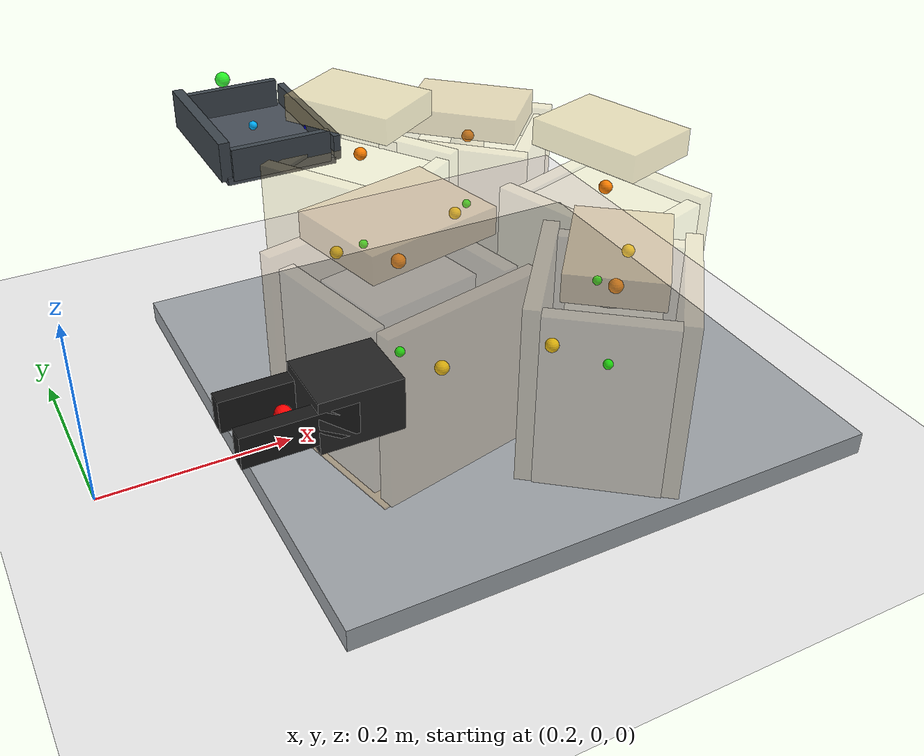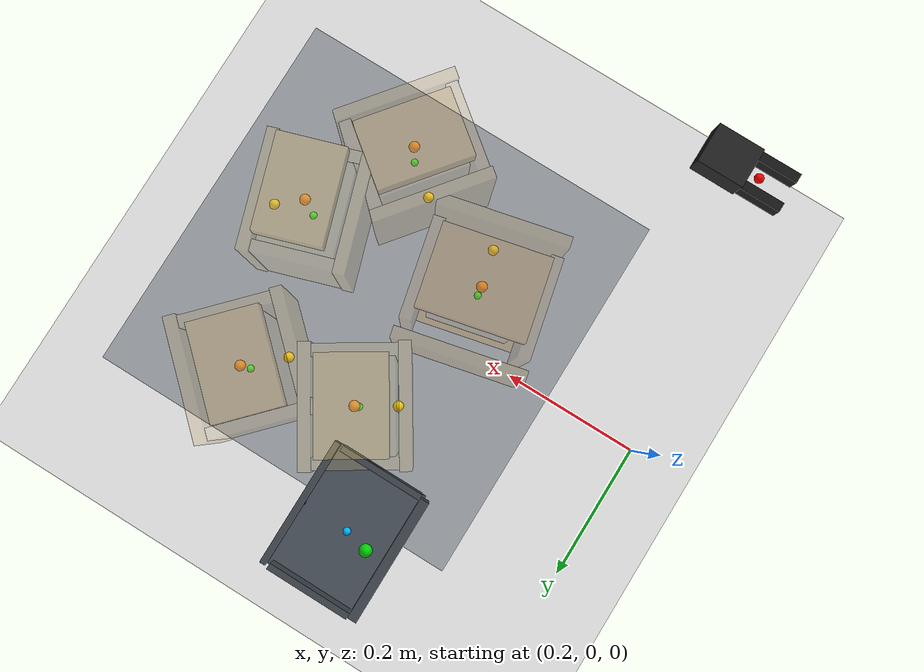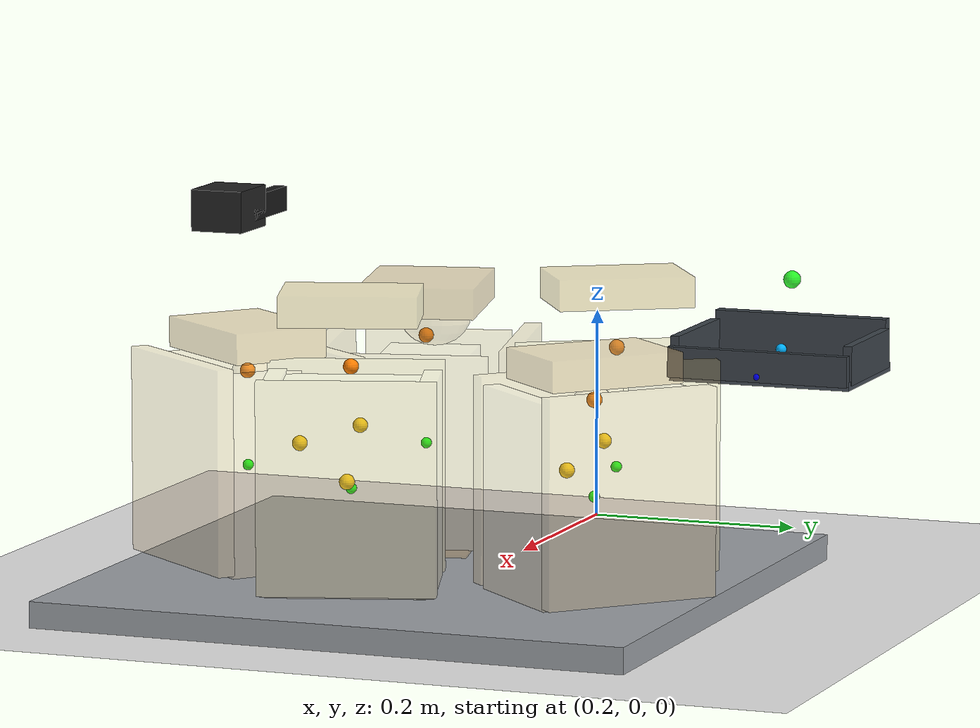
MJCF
<mujoco model="srch2_24">
  <compiler angle="radian" coordinate="local" inertiafromgeom="true"/>
  <option timestep="0.002" gravity="0 0 -9.81" integrator="implicitfast" iterations="80" tolerance="1e-8"/>
  <size memory="512M" nconmax="8000"/>

  <visual>
    <global azimuth="125" elevation="-24"/>
    <headlight ambient="0.30 0.30 0.30" diffuse="0.75 0.75 0.75" specular="0.15 0.15 0.15"/>
    <rgba haze="0.12 0.15 0.20 1"/>
  </visual>

  <default>
    <geom condim="4" friction="1.1 0.03 0.01" margin="0.003" solimp="0.92 0.97 0.003" solref="0.010 1"/>
    <joint damping="1.0" armature="0.002"/>
    <motor ctrllimited="true"/>
    <position kp="2500" forcelimited="true" forcerange="-400 400"/>
    <equality solref="0.010 1" solimp="0.92 0.97 0.004"/>
  </default>

  <worldbody>
    <light name="key" pos="0.9 0.0 1.8" dir="-0.3 0 -1" directional="true"/>
    <geom name="floor" type="plane" size="2 2 0.1" rgba="0.93 0.93 0.93 1"/>
    <geom name="work_pad" type="box" pos="0.62 0 0.012" size="0.28 0.28 0.012" rgba="0.62 0.64 0.66 1" friction="1.3 0.05 0.01"/>
    <camera name="overview" pos="1.20 0.00 0.92" xyaxes="0 1 0 -0.48 0 0.88"/>

    <body name="gripper_mocap" mocap="true" pos="0.36 -0.33 0.30" quat="0.707107 0 -0.707107 0"/>
    <body name="scoop_mocap" mocap="true" pos="0.42 0.28 0.20" quat="1 0 0 0"/>

    <body name="gripper_tool" pos="0.36 -0.33 0.30" quat="0.707107 0 -0.707107 0">
      <freejoint name="gripper_tool_free"/>
      <inertial pos="0 0 0.04" mass="0.08" diaginertia="0.0002 0.0002 0.0002"/>
      <geom name="gripper_palm" type="box" pos="0 0 0.030" size="0.020 0.026 0.030" rgba="0.14 0.14 0.14 1"/>
      <body name="left_finger_body" pos="0 0 0.072">
        <joint name="left_finger_slide" type="slide" axis="0 1 0" limited="true" range="0.010 0.040" damping="12"/>
        <geom name="left_finger_geom" type="box" pos="0 0.020 0" size="0.012 0.006 0.040" rgba="0.10 0.10 0.10 1" friction="2.2 0.05 0.01"/>
      </body>
      <body name="right_finger_body" pos="0 0 0.072">
        <joint name="right_finger_slide" type="slide" axis="0 -1 0" limited="true" range="0.010 0.040" damping="12"/>
        <geom name="right_finger_geom" type="box" pos="0 -0.020 0" size="0.012 0.006 0.040" rgba="0.10 0.10 0.10 1" friction="2.2 0.05 0.01"/>
      </body>
      <site name="gripper_pinch_site" pos="0 0 0.074" size="0.006" rgba="1 0 0 1"/>
    </body>

    <body name="scoop_tool" pos="0.42 0.28 0.20" quat="1 0 0 0">
      <freejoint name="scoop_tool_free"/>
      <inertial pos="0 0 0.02" mass="0.10" diaginertia="0.0003 0.0003 0.0003"/>
      <geom name="scoop_plate" type="box" pos="0.062 0 0" size="0.062 0.085 0.004" rgba="0.28 0.31 0.35 1" friction="1.7 0.05 0.01"/>
      <geom name="scoop_lip" type="box" pos="0.126 0 0.014" size="0.004 0.085 0.014" rgba="0.24 0.27 0.30 1" friction="1.7 0.05 0.01"/>
      <geom name="scoop_left_rail" type="box" pos="0.062 0.082 0.018" size="0.056 0.004 0.018" rgba="0.24 0.27 0.30 1"/>
      <geom name="scoop_right_rail" type="box" pos="0.062 -0.082 0.018" size="0.056 0.004 0.018" rgba="0.24 0.27 0.30 1"/>
      <geom name="scoop_backstop" type="box" pos="0.000 0 0.022" size="0.006 0.082 0.022" rgba="0.24 0.27 0.30 1"/>
      <site name="scoop_tip_site" pos="0.126 0 0.005" size="0.005" rgba="0 0 1 1"/>
      <site name="scoop_center_site" pos="0.060 0 0.020" size="0.005" rgba="0 0.7 1 1"/>
      <site name="score_overlay_site" pos="0.030 0 0.080" size="0.008" rgba="0 1 0 0.8"/>
    </body>

    <body name="sack_0" pos="0.4968 -0.0603 0.1150" quat="0.993653 0 0 0.112488">
      <freejoint name="sack_0_free"/>
      <site name="sack_0_center_site" pos="0 0 0" size="0.005" rgba="0 1 0 1"/>
      <site name="sack_0_top_site" pos="0 0 0.1010" size="0.007" rgba="1 0.5 0 1"/>
      <site name="sack_0_side_site" pos="0 -0.0620 0.015" size="0.007" rgba="1 0.8 0 1"/>

      <body name="sack_0_core">
        <inertial pos="0 0 0" mass="1.3640" diaginertia="0.010 0.010 0.010"/>
        <geom name="sack_0_core_geom" type="box" size="0.0580 0.0420 0.0840" rgba="0.760 0.610 0.390 0.22" friction="0.9 0.02 0.01"/>
      </body>

      <body name="sack_0_shell_bottom" pos="0 -0.0177 -0.0970">
        <joint name="sack_0_bottom_x" type="slide" axis="1 0 0" limited="true" range="-0.010 0.010" damping="18" stiffness="264.8"/>
        <joint name="sack_0_bottom_y" type="slide" axis="0 1 0" limited="true" range="-0.010 0.010" damping="18" stiffness="264.8"/>
        <joint name="sack_0_bottom_z" type="slide" axis="0 0 1" limited="true" range="-0.004 0.018" damping="20" stiffness="326.0"/>
        <geom name="sack_0_bottom_support" type="box" size="0.0880 0.0680 0.0080" mass="0.2640" rgba="0.760 0.610 0.390 0.45" friction="1.4 0.05 0.01"/>
      </body>

      <body name="sack_0_shell_top" pos="0 0 0.1410">
        <joint name="sack_0_top_x" type="slide" axis="1 0 0" limited="true" range="-0.014 0.014" damping="12" stiffness="208.0"/>
        <joint name="sack_0_top_y" type="slide" axis="0 1 0" limited="true" range="-0.014 0.014" damping="12" stiffness="208.0"/>
        <joint name="sack_0_top_z" type="slide" axis="0 0 1" limited="true" range="-0.030 0.008" damping="14" stiffness="146.0"/>
        <geom name="sack_0_top_grip" type="box" size="0.0700 0.0540 0.0140" mass="0.1760" rgba="0.760 0.610 0.390 0.440" friction="2.0 0.05 0.01"/>
      </body>

      <body name="sack_0_shell_left" pos="0 0.0880 0.010">
        <joint name="sack_0_left_side_slide" type="slide" axis="0 -1 0" limited="true" range="-0.024 0.012" damping="15" stiffness="175.5"/>
        <geom name="sack_0_side_left" type="box" size="0.0880 0.0080 0.0910" mass="0.1980" rgba="0.760 0.610 0.390 0.28"/>
      </body>

      <body name="sack_0_shell_right" pos="0 -0.0880 0.010">
        <joint name="sack_0_right_side_slide" type="slide" axis="0 1 0" limited="true" range="-0.024 0.012" damping="15" stiffness="175.5"/>
        <geom name="sack_0_side_right" type="box" size="0.0880 0.0080 0.0910" mass="0.1980" rgba="0.760 0.610 0.390 0.28"/>
      </body>

      <body name="sack_0_shell_front" pos="0.0780 0 0.005">
        <joint name="sack_0_front_slide" type="slide" axis="-1 0 0" limited="true" range="-0.018 0.010" damping="15" stiffness="196.1"/>
        <geom name="sack_0_front_panel" type="box" size="0.0080 0.0680 0.0890" mass="0.1540" rgba="0.760 0.610 0.390 0.24"/>
      </body>

      <body name="sack_0_shell_back" pos="-0.0780 0 0.005">
        <joint name="sack_0_back_slide" type="slide" axis="1 0 0" limited="true" range="-0.018 0.010" damping="15" stiffness="196.1"/>
        <geom name="sack_0_back_panel" type="box" size="0.0080 0.0680 0.0890" mass="0.1540" rgba="0.760 0.610 0.390 0.24"/>
      </body>

      <body name="sack_0_local_bulge" pos="0 0.0080 0.1220">
        <joint name="sack_0_bulge_y" type="slide" axis="0 1 0" limited="true" range="-0.020 0.020" damping="9" stiffness="88.0"/>
        <joint name="sack_0_bulge_z" type="slide" axis="0 0 1" limited="true" range="-0.010 0.020" damping="9" stiffness="88.0"/>
        <geom name="sack_0_compliant_patch" type="ellipsoid" size="0.020 0.0340 0.030" mass="0.1100" rgba="0.760 0.610 0.390 0.32"/>
      </body>
    </body>

    <body name="sack_1" pos="0.6630 -0.1691 0.1150" quat="0.437836 0 0 -0.899055">
      <freejoint name="sack_1_free"/>
      <site name="sack_1_center_site" pos="0 0 0" size="0.005" rgba="0 1 0 1"/>
      <site name="sack_1_top_site" pos="0 0 0.0870" size="0.007" rgba="1 0.5 0 1"/>
      <site name="sack_1_side_site" pos="0 -0.0540 0.015" size="0.007" rgba="1 0.8 0 1"/>

      <body name="sack_1_core">
        <inertial pos="0 0 0" mass="1.1160" diaginertia="0.010 0.010 0.010"/>
        <geom name="sack_1_core_geom" type="box" size="0.0600 0.0440 0.0750" rgba="0.830 0.690 0.450 0.22" friction="0.9 0.02 0.01"/>
      </body>

      <body name="sack_1_shell_bottom" pos="0 -0.0077 -0.1000">
        <joint name="sack_1_bottom_x" type="slide" axis="1 0 0" limited="true" range="-0.010 0.010" damping="18" stiffness="268.0"/>
        <joint name="sack_1_bottom_y" type="slide" axis="0 1 0" limited="true" range="-0.010 0.010" damping="18" stiffness="268.0"/>
        <joint name="sack_1_bottom_z" type="slide" axis="0 0 1" limited="true" range="-0.004 0.018" damping="20" stiffness="330.0"/>
        <geom name="sack_1_bottom_support" type="box" size="0.0820 0.0600 0.0080" mass="0.2160" rgba="0.830 0.690 0.450 0.45" friction="1.4 0.05 0.01"/>
      </body>

      <body name="sack_1_shell_top" pos="0 0 0.1180">
        <joint name="sack_1_top_x" type="slide" axis="1 0 0" limited="true" range="-0.014 0.014" damping="12" stiffness="208.0"/>
        <joint name="sack_1_top_y" type="slide" axis="0 1 0" limited="true" range="-0.014 0.014" damping="12" stiffness="208.0"/>
        <joint name="sack_1_top_z" type="slide" axis="0 0 1" limited="true" range="-0.030 0.008" damping="14" stiffness="146.0"/>
        <geom name="sack_1_top_grip" type="box" size="0.0640 0.0460 0.0140" mass="0.1440" rgba="0.830 0.690 0.450 0.440" friction="2.0 0.05 0.01"/>
      </body>

      <body name="sack_1_shell_left" pos="0 0.0680 0.010">
        <joint name="sack_1_left_side_slide" type="slide" axis="0 -1 0" limited="true" range="-0.024 0.012" damping="15" stiffness="176.8"/>
        <geom name="sack_1_side_left" type="box" size="0.0820 0.0080 0.0940" mass="0.1620" rgba="0.830 0.690 0.450 0.28"/>
      </body>

      <body name="sack_1_shell_right" pos="0 -0.0680 0.010">
        <joint name="sack_1_right_side_slide" type="slide" axis="0 1 0" limited="true" range="-0.024 0.012" damping="15" stiffness="176.8"/>
        <geom name="sack_1_side_right" type="box" size="0.0820 0.0080 0.0940" mass="0.1620" rgba="0.830 0.690 0.450 0.28"/>
      </body>

      <body name="sack_1_shell_front" pos="0.0720 0 0.005">
        <joint name="sack_1_front_slide" type="slide" axis="-1 0 0" limited="true" range="-0.018 0.010" damping="15" stiffness="197.2"/>
        <geom name="sack_1_front_panel" type="box" size="0.0080 0.0600 0.0920" mass="0.1260" rgba="0.830 0.690 0.450 0.24"/>
      </body>

      <body name="sack_1_shell_back" pos="-0.0720 0 0.005">
        <joint name="sack_1_back_slide" type="slide" axis="1 0 0" limited="true" range="-0.018 0.010" damping="15" stiffness="197.2"/>
        <geom name="sack_1_back_panel" type="box" size="0.0080 0.0600 0.0920" mass="0.1260" rgba="0.830 0.690 0.450 0.24"/>
      </body>

      <body name="sack_1_local_bulge" pos="0 -0.0040 0.0720">
        <joint name="sack_1_bulge_y" type="slide" axis="0 1 0" limited="true" range="-0.020 0.020" damping="9" stiffness="88.6"/>
        <joint name="sack_1_bulge_z" type="slide" axis="0 0 1" limited="true" range="-0.010 0.020" damping="9" stiffness="88.6"/>
        <geom name="sack_1_compliant_patch" type="ellipsoid" size="0.020 0.0220 0.030" mass="0.0900" rgba="0.830 0.690 0.450 0.32"/>
      </body>
    </body>

    <body name="sack_2" pos="0.7400 -0.0364 0.1150" quat="0.808587 0 0 -0.588377">
      <freejoint name="sack_2_free"/>
      <site name="sack_2_center_site" pos="0 0 0" size="0.005" rgba="0 1 0 1"/>
      <site name="sack_2_top_site" pos="0 0 0.1100" size="0.007" rgba="1 0.5 0 1"/>
      <site name="sack_2_side_site" pos="0 0.0520 0.015" size="0.007" rgba="1 0.8 0 1"/>

      <body name="sack_2_core">
        <inertial pos="0 0 0" mass="1.6740" diaginertia="0.010 0.010 0.010"/>
        <geom name="sack_2_core_geom" type="box" size="0.0700 0.0500 0.0950" rgba="0.860 0.750 0.480 0.22" friction="0.9 0.02 0.01"/>
      </body>

      <body name="sack_2_shell_bottom" pos="0 0.0080 -0.1020">
        <joint name="sack_2_bottom_x" type="slide" axis="1 0 0" limited="true" range="-0.010 0.010" damping="18" stiffness="272.0"/>
        <joint name="sack_2_bottom_y" type="slide" axis="0 1 0" limited="true" range="-0.010 0.010" damping="18" stiffness="272.0"/>
        <joint name="sack_2_bottom_z" type="slide" axis="0 0 1" limited="true" range="-0.004 0.018" damping="20" stiffness="335.0"/>
        <geom name="sack_2_bottom_support" type="box" size="0.0800 0.0580 0.0080" mass="0.3240" rgba="0.860 0.750 0.480 0.45" friction="1.4 0.05 0.01"/>
      </body>

      <body name="sack_2_shell_top" pos="0 0 0.1650">
        <joint name="sack_2_top_x" type="slide" axis="1 0 0" limited="true" range="-0.014 0.014" damping="12" stiffness="208.0"/>
        <joint name="sack_2_top_y" type="slide" axis="0 1 0" limited="true" range="-0.014 0.014" damping="12" stiffness="208.0"/>
        <joint name="sack_2_top_z" type="slide" axis="0 0 1" limited="true" range="-0.030 0.008" damping="14" stiffness="146.0"/>
        <geom name="sack_2_top_grip" type="box" size="0.0620 0.0440 0.0140" mass="0.2160" rgba="0.860 0.750 0.480 0.440" friction="2.0 0.05 0.01"/>
      </body>

      <body name="sack_2_shell_left" pos="0 0.0620 0.010">
        <joint name="sack_2_left_side_slide" type="slide" axis="0 -1 0" limited="true" range="-0.024 0.012" damping="15" stiffness="178.4"/>
        <geom name="sack_2_side_left" type="box" size="0.0800 0.0080 0.0960" mass="0.2430" rgba="0.860 0.750 0.480 0.28"/>
      </body>

      <body name="sack_2_shell_right" pos="0 -0.0620 0.010">
        <joint name="sack_2_right_side_slide" type="slide" axis="0 1 0" limited="true" range="-0.024 0.012" damping="15" stiffness="178.4"/>
        <geom name="sack_2_side_right" type="box" size="0.0800 0.0080 0.0960" mass="0.2430" rgba="0.860 0.750 0.480 0.28"/>
      </body>

      <body name="sack_2_shell_front" pos="0.0700 0 0.005">
        <joint name="sack_2_front_slide" type="slide" axis="-1 0 0" limited="true" range="-0.018 0.010" damping="15" stiffness="198.6"/>
        <geom name="sack_2_front_panel" type="box" size="0.0080 0.0580 0.0940" mass="0.1890" rgba="0.860 0.750 0.480 0.24"/>
      </body>

      <body name="sack_2_shell_back" pos="-0.0700 0 0.005">
        <joint name="sack_2_back_slide" type="slide" axis="1 0 0" limited="true" range="-0.018 0.010" damping="15" stiffness="198.6"/>
        <geom name="sack_2_back_panel" type="box" size="0.0080 0.0580 0.0940" mass="0.1890" rgba="0.860 0.750 0.480 0.24"/>
      </body>

      <body name="sack_2_local_bulge" pos="0 0.0080 0.0520">
        <joint name="sack_2_bulge_y" type="slide" axis="0 1 0" limited="true" range="-0.020 0.020" damping="9" stiffness="89.3"/>
        <joint name="sack_2_bulge_z" type="slide" axis="0 0 1" limited="true" range="-0.010 0.020" damping="9" stiffness="89.3"/>
        <geom name="sack_2_compliant_patch" type="ellipsoid" size="0.020 0.0180 0.030" mass="0.1350" rgba="0.860 0.750 0.480 0.32"/>
      </body>
    </body>

    <body name="sack_3" pos="0.5525 0.1473 0.1150" quat="0.876492 0 0 -0.481417">
      <freejoint name="sack_3_free"/>
      <site name="sack_3_center_site" pos="0 0 0" size="0.005" rgba="0 1 0 1"/>
      <site name="sack_3_top_site" pos="0 0 0.1100" size="0.007" rgba="1 0.5 0 1"/>
      <site name="sack_3_side_site" pos="0 -0.0520 0.015" size="0.007" rgba="1 0.8 0 1"/>

      <body name="sack_3_core">
        <inertial pos="0 0 0" mass="1.6740" diaginertia="0.010 0.010 0.010"/>
        <geom name="sack_3_core_geom" type="box" size="0.0700 0.0500 0.0950" rgba="0.860 0.750 0.480 0.22" friction="0.9 0.02 0.01"/>
      </body>

      <body name="sack_3_shell_bottom" pos="0 -0.0001 -0.1020">
        <joint name="sack_3_bottom_x" type="slide" axis="1 0 0" limited="true" range="-0.010 0.010" damping="18" stiffness="272.0"/>
        <joint name="sack_3_bottom_y" type="slide" axis="0 1 0" limited="true" range="-0.010 0.010" damping="18" stiffness="272.0"/>
        <joint name="sack_3_bottom_z" type="slide" axis="0 0 1" limited="true" range="-0.004 0.018" damping="20" stiffness="335.0"/>
        <geom name="sack_3_bottom_support" type="box" size="0.0800 0.0580 0.0080" mass="0.3240" rgba="0.860 0.750 0.480 0.45" friction="1.4 0.05 0.01"/>
      </body>

      <body name="sack_3_shell_top" pos="0 0 0.1650">
        <joint name="sack_3_top_x" type="slide" axis="1 0 0" limited="true" range="-0.014 0.014" damping="12" stiffness="208.0"/>
        <joint name="sack_3_top_y" type="slide" axis="0 1 0" limited="true" range="-0.014 0.014" damping="12" stiffness="208.0"/>
        <joint name="sack_3_top_z" type="slide" axis="0 0 1" limited="true" range="-0.030 0.008" damping="14" stiffness="146.0"/>
        <geom name="sack_3_top_grip" type="box" size="0.0620 0.0440 0.0140" mass="0.2160" rgba="0.860 0.750 0.480 0.440" friction="2.0 0.05 0.01"/>
      </body>

      <body name="sack_3_shell_left" pos="0 0.0620 0.010">
        <joint name="sack_3_left_side_slide" type="slide" axis="0 -1 0" limited="true" range="-0.024 0.012" damping="15" stiffness="178.4"/>
        <geom name="sack_3_side_left" type="box" size="0.0800 0.0080 0.0960" mass="0.2430" rgba="0.860 0.750 0.480 0.28"/>
      </body>

      <body name="sack_3_shell_right" pos="0 -0.0620 0.010">
        <joint name="sack_3_right_side_slide" type="slide" axis="0 1 0" limited="true" range="-0.024 0.012" damping="15" stiffness="178.4"/>
        <geom name="sack_3_side_right" type="box" size="0.0800 0.0080 0.0960" mass="0.2430" rgba="0.860 0.750 0.480 0.28"/>
      </body>

      <body name="sack_3_shell_front" pos="0.0700 0 0.005">
        <joint name="sack_3_front_slide" type="slide" axis="-1 0 0" limited="true" range="-0.018 0.010" damping="15" stiffness="198.6"/>
        <geom name="sack_3_front_panel" type="box" size="0.0080 0.0580 0.0940" mass="0.1890" rgba="0.860 0.750 0.480 0.24"/>
      </body>

      <body name="sack_3_shell_back" pos="-0.0700 0 0.005">
        <joint name="sack_3_back_slide" type="slide" axis="1 0 0" limited="true" range="-0.018 0.010" damping="15" stiffness="198.6"/>
        <geom name="sack_3_back_panel" type="box" size="0.0080 0.0580 0.0940" mass="0.1890" rgba="0.860 0.750 0.480 0.24"/>
      </body>

      <body name="sack_3_local_bulge" pos="0 -0.0080 0.0520">
        <joint name="sack_3_bulge_y" type="slide" axis="0 1 0" limited="true" range="-0.020 0.020" damping="9" stiffness="89.3"/>
        <joint name="sack_3_bulge_z" type="slide" axis="0 0 1" limited="true" range="-0.010 0.020" damping="9" stiffness="89.3"/>
        <geom name="sack_3_compliant_patch" type="ellipsoid" size="0.020 0.0180 0.030" mass="0.1350" rgba="0.860 0.750 0.480 0.32"/>
      </body>
    </body>

    <body name="sack_4" pos="0.7010 0.1802 0.1150" quat="0.930286 0 0 -0.366835">
      <freejoint name="sack_4_free"/>
      <site name="sack_4_center_site" pos="0 0 0" size="0.005" rgba="0 1 0 1"/>
      <site name="sack_4_top_site" pos="0 0 0.0870" size="0.007" rgba="1 0.5 0 1"/>
      <site name="sack_4_side_site" pos="0 -0.0540 0.015" size="0.007" rgba="1 0.8 0 1"/>

      <body name="sack_4_core">
        <inertial pos="0 0 0" mass="1.1160" diaginertia="0.010 0.010 0.010"/>
        <geom name="sack_4_core_geom" type="box" size="0.0600 0.0440 0.0750" rgba="0.830 0.690 0.450 0.22" friction="0.9 0.02 0.01"/>
      </body>

      <body name="sack_4_shell_bottom" pos="0 -0.0167 -0.1000">
        <joint name="sack_4_bottom_x" type="slide" axis="1 0 0" limited="true" range="-0.010 0.010" damping="18" stiffness="268.0"/>
        <joint name="sack_4_bottom_y" type="slide" axis="0 1 0" limited="true" range="-0.010 0.010" damping="18" stiffness="268.0"/>
        <joint name="sack_4_bottom_z" type="slide" axis="0 0 1" limited="true" range="-0.004 0.018" damping="20" stiffness="330.0"/>
        <geom name="sack_4_bottom_support" type="box" size="0.0820 0.0600 0.0080" mass="0.2160" rgba="0.830 0.690 0.450 0.45" friction="1.4 0.05 0.01"/>
      </body>

      <body name="sack_4_shell_top" pos="0 0 0.1180">
        <joint name="sack_4_top_x" type="slide" axis="1 0 0" limited="true" range="-0.014 0.014" damping="12" stiffness="208.0"/>
        <joint name="sack_4_top_y" type="slide" axis="0 1 0" limited="true" range="-0.014 0.014" damping="12" stiffness="208.0"/>
        <joint name="sack_4_top_z" type="slide" axis="0 0 1" limited="true" range="-0.030 0.008" damping="14" stiffness="146.0"/>
        <geom name="sack_4_top_grip" type="box" size="0.0640 0.0460 0.0140" mass="0.1440" rgba="0.830 0.690 0.450 0.440" friction="2.0 0.05 0.01"/>
      </body>

      <body name="sack_4_shell_left" pos="0 0.0680 0.010">
        <joint name="sack_4_left_side_slide" type="slide" axis="0 -1 0" limited="true" range="-0.024 0.012" damping="15" stiffness="176.8"/>
        <geom name="sack_4_side_left" type="box" size="0.0820 0.0080 0.0940" mass="0.1620" rgba="0.830 0.690 0.450 0.28"/>
      </body>

      <body name="sack_4_shell_right" pos="0 -0.0680 0.010">
        <joint name="sack_4_right_side_slide" type="slide" axis="0 1 0" limited="true" range="-0.024 0.012" damping="15" stiffness="176.8"/>
        <geom name="sack_4_side_right" type="box" size="0.0820 0.0080 0.0940" mass="0.1620" rgba="0.830 0.690 0.450 0.28"/>
      </body>

      <body name="sack_4_shell_front" pos="0.0720 0 0.005">
        <joint name="sack_4_front_slide" type="slide" axis="-1 0 0" limited="true" range="-0.018 0.010" damping="15" stiffness="197.2"/>
        <geom name="sack_4_front_panel" type="box" size="0.0080 0.0600 0.0920" mass="0.1260" rgba="0.830 0.690 0.450 0.24"/>
      </body>

      <body name="sack_4_shell_back" pos="-0.0720 0 0.005">
        <joint name="sack_4_back_slide" type="slide" axis="1 0 0" limited="true" range="-0.018 0.010" damping="15" stiffness="197.2"/>
        <geom name="sack_4_back_panel" type="box" size="0.0080 0.0600 0.0920" mass="0.1260" rgba="0.830 0.690 0.450 0.24"/>
      </body>

      <body name="sack_4_local_bulge" pos="0 -0.0040 0.0720">
        <joint name="sack_4_bulge_y" type="slide" axis="0 1 0" limited="true" range="-0.020 0.020" damping="9" stiffness="88.6"/>
        <joint name="sack_4_bulge_z" type="slide" axis="0 0 1" limited="true" range="-0.010 0.020" damping="9" stiffness="88.6"/>
        <geom name="sack_4_compliant_patch" type="ellipsoid" size="0.020 0.0220 0.030" mass="0.0900" rgba="0.830 0.690 0.450 0.32"/>
      </body>
    </body>
  </worldbody>

  <equality>
    <weld name="gripper_follow" body1="gripper_mocap" body2="gripper_tool" torquescale="400" solref="0.002 1" solimp="0.99 0.999 0.0001"/>
    <weld name="scoop_follow" body1="scoop_mocap" body2="scoop_tool" torquescale="500" solref="0.002 1" solimp="0.99 0.999 0.0001"/>
  </equality>

  <actuator>
    <position name="left_finger_act" joint="left_finger_slide" ctrlrange="0.010 0.040" kp="2800" forcerange="-220 220"/>
    <position name="right_finger_act" joint="right_finger_slide" ctrlrange="0.010 0.040" kp="2800" forcerange="-220 220"/>
  </actuator>

  <contact>
    <exclude body1="sack_0_core" body2="sack_0_shell_top"/>
    <exclude body1="sack_1_core" body2="sack_1_shell_top"/>
    <exclude body1="sack_2_core" body2="sack_2_shell_top"/>
    <exclude body1="sack_3_core" body2="sack_3_shell_top"/>
    <exclude body1="sack_4_core" body2="sack_4_shell_top"/>
  </contact>
</mujoco>
